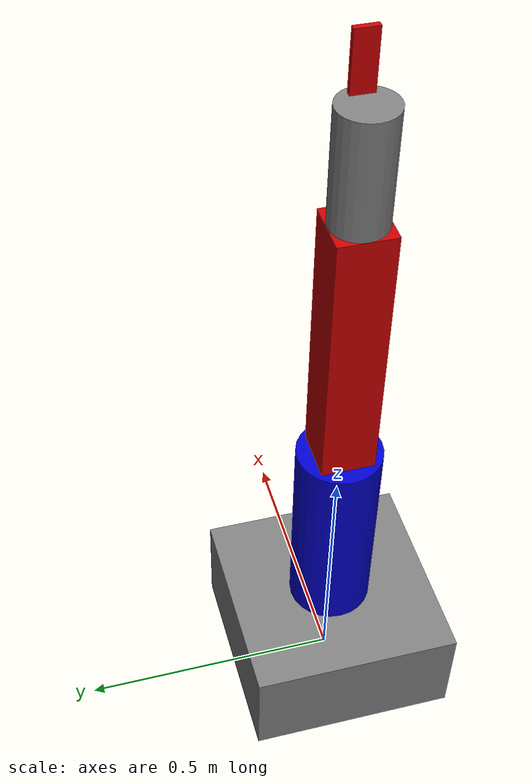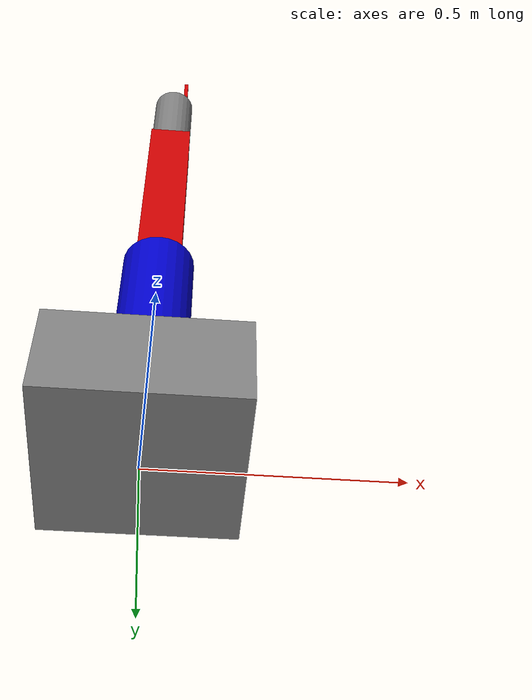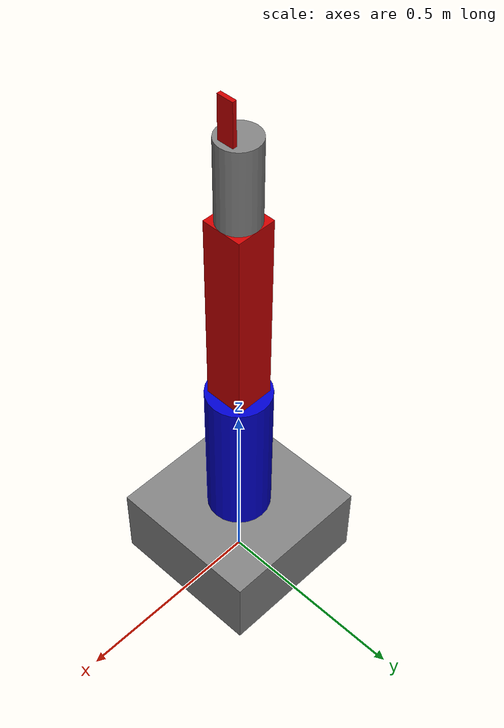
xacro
<?xml version="1.0"?>
<robot name="my_robot" xmlns:xacro="http://www.ros.org/wiki/xacro">

  <xacro:include filename="$(find my_robot_description)/urdf/inertia_macros.xacro"/>

  <material name="blue"><color rgba="0.0 0.0 0.8 1.0"/></material>
  <material name="grey"><color rgba="0.5 0.5 0.5 1.0"/></material>
  <material name="red"><color rgba="0.8 0.0 0.0 1.0"/></material>

  <link name="world"/>

  <joint name="world_joint" type="fixed">
    <parent link="world"/>
    <child link="base_link"/>
    <origin xyz="0 0 0" rpy="0 0 0"/>
  </joint>

  <link name="base_link">
    <visual>
      <origin xyz="0 0 0.1" rpy="0 0 0"/>
      <geometry><box size="0.4 0.4 0.2"/></geometry>
      <material name="grey"/>
    </visual>
    <collision>
      <origin xyz="0 0 0.1" rpy="0 0 0"/>
      <geometry><box size="0.4 0.4 0.2"/></geometry>
    </collision>
    <xacro:inertial_box mass="10.0" x="0.4" y="0.4" z="0.2">
      <origin xyz="0 0 0.1" rpy="0 0 0"/>
    </xacro:inertial_box>
  </link>

  <joint name="joint1_yaw" type="revolute">
    <parent link="base_link"/>
    <child link="link1"/>
    <origin xyz="0 0 0.2" rpy="0 0 0"/>
    <axis xyz="0 0 1"/>
    <limit lower="-3.14" upper="3.14" effort="10.0" velocity="1.0"/>
  </joint>

  <link name="link1">
    <visual>
      <origin xyz="0 0 0.2" rpy="0 0 0"/>
      <geometry><cylinder radius="0.08" length="0.4"/></geometry>
      <material name="blue"/>
    </visual>
    <collision>
      <origin xyz="0 0 0.2" rpy="0 0 0"/>
      <geometry><cylinder radius="0.08" length="0.4"/></geometry>
    </collision>
    <xacro:inertial_cylinder mass="2.0" length="0.4" radius="0.08">
      <origin xyz="0 0 0.2" rpy="0 0 0"/>
    </xacro:inertial_cylinder>
  </link>

  <joint name="joint2_pitch" type="revolute">
    <parent link="link1"/>
    <child link="link2"/>
    <origin xyz="0 0 0.4" rpy="0 0 0"/>
    <axis xyz="0 1 0"/>
    <limit lower="-1.57" upper="1.57" effort="10.0" velocity="1.0"/>
  </joint>

  <link name="link2">
    <visual>
      <origin xyz="0 0 0.25" rpy="0 0 0"/>
      <geometry><box size="0.1 0.1 0.5"/></geometry>
      <material name="red"/>
    </visual>
    <collision>
      <origin xyz="0 0 0.25" rpy="0 0 0"/>
      <geometry><box size="0.1 0.1 0.5"/></geometry>
    </collision>
    <xacro:inertial_box mass="1.5" x="0.1" y="0.1" z="0.5">
      <origin xyz="0 0 0.25" rpy="0 0 0"/>
    </xacro:inertial_box>
  </link>

  <joint name="joint3_roll" type="continuous">
    <parent link="link2"/>
    <child link="link3"/>
    <origin xyz="0 0 0.5" rpy="0 0 0"/>
    <axis xyz="0 0 1"/>
  </joint>

  <link name="link3">
    <visual>
      <origin xyz="0 0 0.1" rpy="0 0 0"/>
      <geometry><cylinder radius="0.05" length="0.2"/></geometry>
      <material name="grey"/>
    </visual>
    <collision>
      <origin xyz="0 0 0.1" rpy="0 0 0"/>
      <geometry><cylinder radius="0.05" length="0.2"/></geometry>
    </collision>
    <xacro:inertial_cylinder mass="0.8" length="0.2" radius="0.05">
      <origin xyz="0 0 0.1" rpy="0 0 0"/>
    </xacro:inertial_cylinder>
  </link>

  <joint name="gripper_left_joint" type="prismatic">
    <parent link="link3"/>
    <child link="gripper_left"/>
    <origin xyz="0.03 0 0.2" rpy="0 0 0"/>
    <axis xyz="1 0 0"/>
    <limit lower="0.0" upper="0.04" effort="5.0" velocity="0.2"/>
  </joint>

  <link name="gripper_left">
    <visual>
      <origin xyz="0 0 0.05" rpy="0 0 0"/>
      <geometry><box size="0.01 0.04 0.1"/></geometry>
      <material name="red"/>
    </visual>
    <collision>
      <origin xyz="0 0 0.05" rpy="0 0 0"/>
      <geometry><box size="0.01 0.04 0.1"/></geometry>
    </collision>
    <xacro:inertial_box mass="0.1" x="0.01" y="0.04" z="0.1">
      <origin xyz="0 0 0.05" rpy="0 0 0"/>
    </xacro:inertial_box>
  </link>

</robot>

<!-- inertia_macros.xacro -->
<robot xmlns:xacro="http://www.ros.org/wiki/xacro">

  <xacro:macro name="inertial_cylinder" params="mass length radius *origin">
    <inertial>
      <xacro:insert_block name="origin" />
      <mass value="${mass}" />
      <inertia ixx="${(1/12) * mass * (3*radius*radius + length*length)}" ixy="0.0" ixz="0.0"
               iyy="${(1/12) * mass * (3*radius*radius + length*length)}" iyz="0.0"
               izz="${(1/2) * mass * radius * radius}" />
    </inertial>
  </xacro:macro>

  <xacro:macro name="inertial_box" params="mass x y z *origin">
    <inertial>
      <xacro:insert_block name="origin" />
      <mass value="${mass}" />
      <inertia ixx="${(1/12) * mass * (y*y + z*z)}" ixy="0.0" ixz="0.0"
               iyy="${(1/12) * mass * (x*x + z*z)}" iyz="0.0"
               izz="${(1/12) * mass * (x*x + y*y)}" />
    </inertial>
  </xacro:macro>

</robot>
